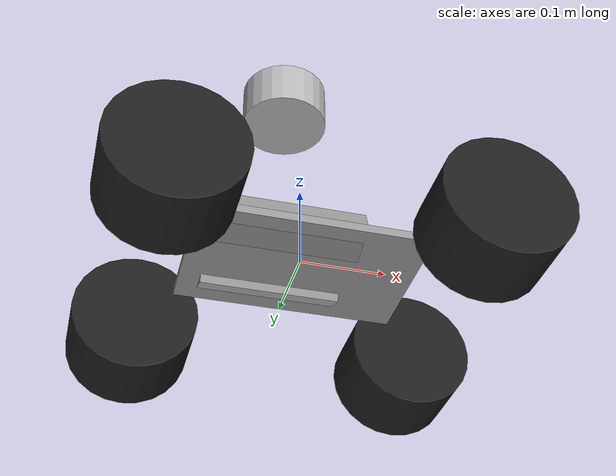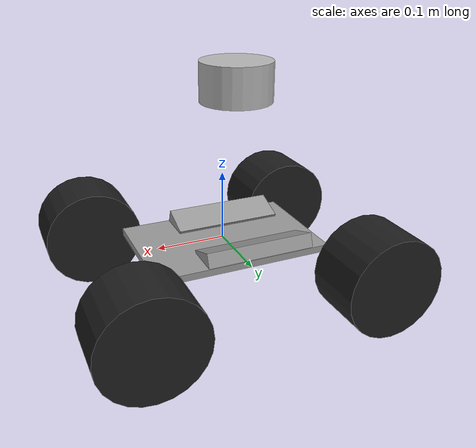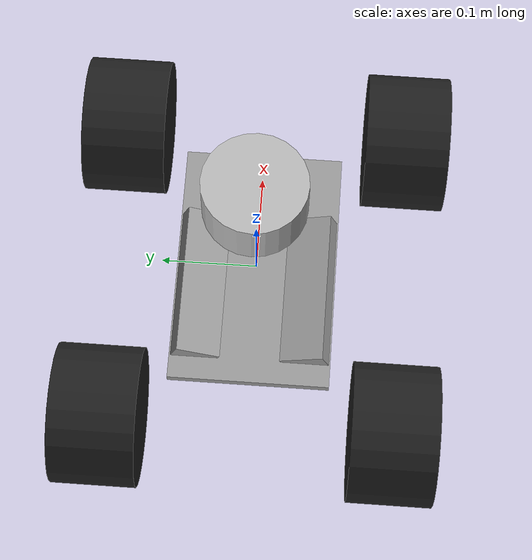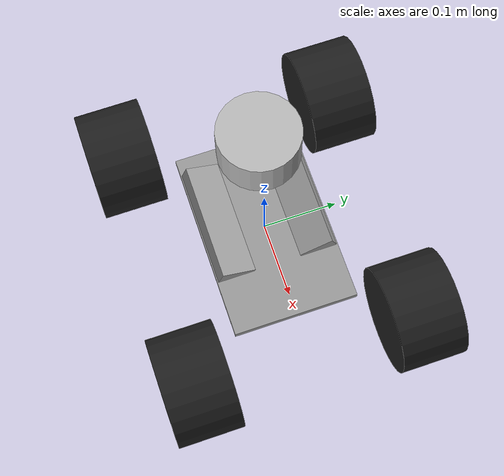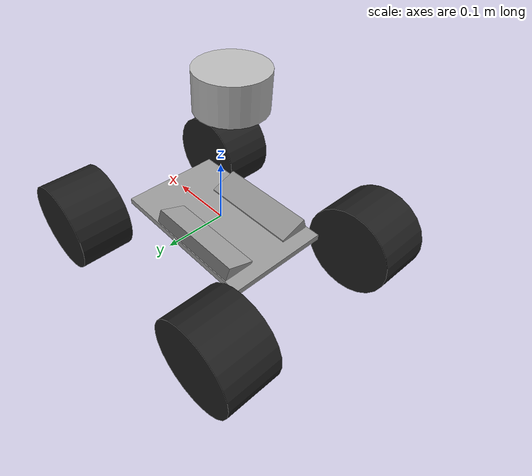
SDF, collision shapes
<?xml version='1.0'?>
<sdf version='1.7'>
  <model name='em_3905'>
    <link name='base_link'>
      <inertial>
        <pose>0 0 -0.003536 0 -0 0</pose>
        <mass>3.795</mass>
        <inertia>
          <ixx>0.0121404</ixx>
          <ixy>0</ixy>
          <ixz>0.00010207</ixz>
          <iyy>0.0201814</iyy>
          <iyz>0</iyz>
          <izz>0.0301018</izz>
        </inertia>
      </inertial>
      <self_collide>0</self_collide>
      <enable_wind>0</enable_wind>
      <kinematic>0</kinematic>
      <pose>0 -0 0 0 -0 0</pose>
      <gravity>1</gravity>
      <visual name='base_link_visual'>
        <pose>0 0 0 0 -0 0</pose>
        <geometry>
          <box>
            <size>0.01 0.01 0.01</size>
          </box>
        </geometry>
        <material>
          <script>
            <name>Gazebo/Grey</name>
            <uri>file://media/materials/scripts/gazebo.material</uri>
          </script>
          <shader type='pixel'>
            <normal_map>__default__</normal_map>
          </shader>
          <ambient>0.3 0.3 0.3 1</ambient>
          <diffuse>0.7 0.7 0.7 1</diffuse>
          <specular>0.01 0.01 0.01 1</specular>
          <emissive>0 0 0 1</emissive>
        </material>
        <transparency>0</transparency>
        <cast_shadows>1</cast_shadows>
      </visual>
      <visual name='base_link_fixed_joint_lump__chassis_visual_1'>
        <pose>0 0 -0.005 0 -0 0</pose>
        <geometry>
          <box>
            <size>0.258 0.168 0.01</size>
          </box>
        </geometry>
        <material>
          <script>
            <name>Gazebo/Grey</name>
            <uri>file://media/materials/scripts/gazebo.material</uri>
          </script>
          <shader type='pixel'>
            <normal_map>__default__</normal_map>
          </shader>
          <ambient>0.3 0.3 0.3 1</ambient>
          <diffuse>0.7 0.7 0.7 1</diffuse>
          <specular>0.01 0.01 0.01 1</specular>
          <emissive>0 0 0 1</emissive>
        </material>
        <transparency>0</transparency>
        <cast_shadows>1</cast_shadows>
      </visual>
      <visual name='base_link_fixed_joint_lump__left_battery_visual_2'>
        <pose>-0.025 0.057319 0.00052 0.349066 -0 0</pose>
        <geometry>
          <box>
            <size>0.16 0.047 0.024</size>
          </box>
        </geometry>
        <material>
          <script>
            <name>Gazebo/Blue</name>
            <uri>file://media/materials/scripts/gazebo.material</uri>
          </script>
          <shader type='pixel'>
            <normal_map>__default__</normal_map>
          </shader>
          <ambient>0 0 1 1</ambient>
          <diffuse>0 0 1 1</diffuse>
          <specular>0.1 0.1 0.1 1</specular>
          <emissive>0 0 0 1</emissive>
        </material>
        <transparency>0</transparency>
        <cast_shadows>1</cast_shadows>
      </visual>
      <visual name='base_link_fixed_joint_lump__right_battery_visual_3'>
        <pose>-0.025 -0.057319 0.00052 -0.349066 0 0</pose>
        <geometry>
          <box>
            <size>0.16 0.047 0.024</size>
          </box>
        </geometry>
        <material>
          <script>
            <name>Gazebo/Blue</name>
            <uri>file://media/materials/scripts/gazebo.material</uri>
          </script>
          <shader type='pixel'>
            <normal_map>__default__</normal_map>
          </shader>
          <ambient>0 0 1 1</ambient>
          <diffuse>0 0 1 1</diffuse>
          <specular>0.1 0.1 0.1 1</specular>
          <emissive>0 0 0 1</emissive>
        </material>
        <transparency>0</transparency>
        <cast_shadows>1</cast_shadows>
      </visual>
      <collision name='base_link_fixed_joint_lump__chassis_collision'>
        <laser_retro>0</laser_retro>
        <max_contacts>10</max_contacts>
        <pose>0 0 -0.005 0 -0 0</pose>
        <geometry>
          <box>
            <size>0.258 0.168 0.01</size>
          </box>
        </geometry>
        <surface>
          <friction>
            <ode>
              <mu>1</mu>
              <mu2>1</mu2>
              <fdir1>0 0 0</fdir1>
              <slip1>0</slip1>
              <slip2>0</slip2>
            </ode>
            <torsional>
              <coefficient>1</coefficient>
              <patch_radius>0</patch_radius>
              <surface_radius>0</surface_radius>
              <use_patch_radius>1</use_patch_radius>
              <ode>
                <slip>0</slip>
              </ode>
            </torsional>
          </friction>
          <bounce>
            <restitution_coefficient>0</restitution_coefficient>
            <threshold>1e+06</threshold>
          </bounce>
          <contact>
            <collide_without_contact>0</collide_without_contact>
            <collide_without_contact_bitmask>1</collide_without_contact_bitmask>
            <collide_bitmask>1</collide_bitmask>
            <ode>
              <soft_cfm>0</soft_cfm>
              <soft_erp>0.2</soft_erp>
              <kp>1e+13</kp>
              <kd>1</kd>
              <max_vel>0.01</max_vel>
              <min_depth>0</min_depth>
            </ode>
            <bullet>
              <split_impulse>1</split_impulse>
              <split_impulse_penetration_threshold>-0.01</split_impulse_penetration_threshold>
              <soft_cfm>0</soft_cfm>
              <soft_erp>0.2</soft_erp>
              <kp>1e+13</kp>
              <kd>1</kd>
            </bullet>
          </contact>
        </surface>
      </collision>
      <collision name='base_link_fixed_joint_lump__left_battery_collision_1'>
        <laser_retro>0</laser_retro>
        <max_contacts>10</max_contacts>
        <pose>-0.025 0.057319 0.00052 0.349066 -0 0</pose>
        <geometry>
          <box>
            <size>0.16 0.047 0.024</size>
          </box>
        </geometry>
        <surface>
          <friction>
            <ode>
              <mu>1</mu>
              <mu2>1</mu2>
              <fdir1>0 0 0</fdir1>
              <slip1>0</slip1>
              <slip2>0</slip2>
            </ode>
            <torsional>
              <coefficient>1</coefficient>
              <patch_radius>0</patch_radius>
              <surface_radius>0</surface_radius>
              <use_patch_radius>1</use_patch_radius>
              <ode>
                <slip>0</slip>
              </ode>
            </torsional>
          </friction>
          <bounce>
            <restitution_coefficient>0</restitution_coefficient>
            <threshold>1e+06</threshold>
          </bounce>
          <contact>
            <collide_without_contact>0</collide_without_contact>
            <collide_without_contact_bitmask>1</collide_without_contact_bitmask>
            <collide_bitmask>1</collide_bitmask>
            <ode>
              <soft_cfm>0</soft_cfm>
              <soft_erp>0.2</soft_erp>
              <kp>1e+13</kp>
              <kd>1</kd>
              <max_vel>0.01</max_vel>
              <min_depth>0</min_depth>
            </ode>
            <bullet>
              <split_impulse>1</split_impulse>
              <split_impulse_penetration_threshold>-0.01</split_impulse_penetration_threshold>
              <soft_cfm>0</soft_cfm>
              <soft_erp>0.2</soft_erp>
              <kp>1e+13</kp>
              <kd>1</kd>
            </bullet>
          </contact>
        </surface>
      </collision>
      <collision name='base_link_fixed_joint_lump__right_battery_collision_2'>
        <laser_retro>0</laser_retro>
        <max_contacts>10</max_contacts>
        <pose>-0.025 -0.057319 0.00052 -0.349066 0 0</pose>
        <geometry>
          <box>
            <size>0.16 0.047 0.024</size>
          </box>
        </geometry>
        <surface>
          <friction>
            <ode>
              <mu>1</mu>
              <mu2>1</mu2>
              <fdir1>0 0 0</fdir1>
              <slip1>0</slip1>
              <slip2>0</slip2>
            </ode>
            <torsional>
              <coefficient>1</coefficient>
              <patch_radius>0</patch_radius>
              <surface_radius>0</surface_radius>
              <use_patch_radius>1</use_patch_radius>
              <ode>
                <slip>0</slip>
              </ode>
            </torsional>
          </friction>
          <bounce>
            <restitution_coefficient>0</restitution_coefficient>
            <threshold>1e+06</threshold>
          </bounce>
          <contact>
            <collide_without_contact>0</collide_without_contact>
            <collide_without_contact_bitmask>1</collide_without_contact_bitmask>
            <collide_bitmask>1</collide_bitmask>
            <ode>
              <soft_cfm>0</soft_cfm>
              <soft_erp>0.2</soft_erp>
              <kp>1e+13</kp>
              <kd>1</kd>
              <max_vel>0.01</max_vel>
              <min_depth>0</min_depth>
            </ode>
            <bullet>
              <split_impulse>1</split_impulse>
              <split_impulse_penetration_threshold>-0.01</split_impulse_penetration_threshold>
              <soft_cfm>0</soft_cfm>
              <soft_erp>0.2</soft_erp>
              <kp>1e+13</kp>
              <kd>1</kd>
            </bullet>
          </contact>
        </surface>
      </collision>
    </link>
    <link name='base_scan'>
      <inertial>
        <pose>-0.02 0 0.161 0 -0 0</pose>
        <inertia>
          <ixx>0.001</ixx>
          <ixy>0</ixy>
          <ixz>0</ixz>
          <iyy>0.001</iyy>
          <iyz>0</iyz>
          <izz>0.001</izz>
        </inertia>
        <mass>0.114</mass>
      </inertial>
      <sensor name='hls_lfcd_lds' type='ray'>
        <always_on>1</always_on>
        <visualize>1</visualize>
        <pose>-0.032 0 0.171 0 -0 0</pose>
        <update_rate>5</update_rate>
        <ray>
          <scan>
            <horizontal>
              <samples>360</samples>
              <resolution>1</resolution>
              <min_angle>0</min_angle>
              <max_angle>6.28</max_angle>
            </horizontal>
            <vertical>
              <samples>1</samples>
              <min_angle>0</min_angle>
              <max_angle>0</max_angle>
            </vertical>
          </scan>
          <range>
            <min>0.12</min>
            <max>3.5</max>
            <resolution>0.015</resolution>
          </range>
          <noise>
            <type>gaussian</type>
            <mean>0</mean>
            <stddev>0.01</stddev>
          </noise>
        </ray>
        <plugin name='turtlebot3_laserscan' filename='libgazebo_ros_ray_sensor.so'>
          <ros>
            <remapping>~/out:=scan</remapping>
          </ros>
          <output_type>sensor_msgs/LaserScan</output_type>
          <frame_name>base_scan</frame_name>
        </plugin>
      </sensor>
      <self_collide>0</self_collide>
      <enable_wind>0</enable_wind>
      <kinematic>0</kinematic>
      <pose>0 -0 0.067201 0 -0 0</pose>
      <visual name='lidar_sensor_visual'>
        <pose>-0.032 0 0.171 0 -0 0</pose>
        <geometry>
          <mesh>
            <uri>model://turtlebot3_burger/meshes/lds.dae</uri>
            <scale>0.001 0.001 0.001</scale>
          </mesh>
        </geometry>
        <material>
          <shader type='pixel'/>
        </material>
        <transparency>0</transparency>
        <cast_shadows>1</cast_shadows>
      </visual>
      <collision name='lidar_sensor_collision'>
        <laser_retro>0</laser_retro>
        <max_contacts>10</max_contacts>
        <pose>-0.02 0 0.161 0 -0 0</pose>
        <geometry>
          <cylinder>
            <radius>0.0508</radius>
            <length>0.055</length>
          </cylinder>
        </geometry>
        <surface>
          <friction>
            <ode>
              <mu>1</mu>
              <mu2>1</mu2>
              <fdir1>0 0 0</fdir1>
              <slip1>0</slip1>
              <slip2>0</slip2>
            </ode>
            <torsional>
              <coefficient>1</coefficient>
              <patch_radius>0</patch_radius>
              <surface_radius>0</surface_radius>
              <use_patch_radius>1</use_patch_radius>
              <ode>
                <slip>0</slip>
              </ode>
            </torsional>
          </friction>
          <bounce>
            <restitution_coefficient>0</restitution_coefficient>
            <threshold>1e+06</threshold>
          </bounce>
          <contact>
            <collide_without_contact>0</collide_without_contact>
            <collide_without_contact_bitmask>1</collide_without_contact_bitmask>
            <collide_bitmask>1</collide_bitmask>
            <ode>
              <soft_cfm>0</soft_cfm>
              <soft_erp>0.2</soft_erp>
              <kp>1e+13</kp>
              <kd>1</kd>
              <max_vel>0.01</max_vel>
              <min_depth>0</min_depth>
            </ode>
            <bullet>
              <split_impulse>1</split_impulse>
              <split_impulse_penetration_threshold>-0.01</split_impulse_penetration_threshold>
              <soft_cfm>0</soft_cfm>
              <soft_erp>0.2</soft_erp>
              <kp>1e+13</kp>
              <kd>1</kd>
            </bullet>
          </contact>
        </surface>
      </collision>
    </link>
    <link name='imu_link'>
      <sensor name='tb3_imu' type='imu'>
        <always_on>1</always_on>
        <update_rate>200</update_rate>
        <imu>
          <angular_velocity>
            <x>
              <noise type='gaussian'>
                <mean>0</mean>
                <stddev>0.0002</stddev>
              </noise>
            </x>
            <y>
              <noise type='gaussian'>
                <mean>0</mean>
                <stddev>0.0002</stddev>
              </noise>
            </y>
            <z>
              <noise type='gaussian'>
                <mean>0</mean>
                <stddev>0.0002</stddev>
              </noise>
            </z>
          </angular_velocity>
          <linear_acceleration>
            <x>
              <noise type='gaussian'>
                <mean>0</mean>
                <stddev>0.017</stddev>
              </noise>
            </x>
            <y>
              <noise type='gaussian'>
                <mean>0</mean>
                <stddev>0.017</stddev>
              </noise>
            </y>
            <z>
              <noise type='gaussian'>
                <mean>0</mean>
                <stddev>0.017</stddev>
              </noise>
            </z>
          </linear_acceleration>
          <angular_velocity/>
          <linear_acceleration/>
        </imu>
        <plugin name='turtlebot3_imu' filename='libgazebo_ros_imu_sensor.so'>
          <ros>
            <remapping>~/out:=imu</remapping>
          </ros>
        </plugin>
      </sensor>
      <self_collide>0</self_collide>
      <inertial>
        <pose>0 0 0 0 -0 0</pose>
        <inertia>
          <ixx>1</ixx>
          <ixy>0</ixy>
          <ixz>0</ixz>
          <iyy>1</iyy>
          <iyz>0</iyz>
          <izz>1</izz>
        </inertia>
        <mass>1</mass>
      </inertial>
      <enable_wind>0</enable_wind>
      <kinematic>0</kinematic>
      <pose>0 -0 0 0 -0 0</pose>
    </link>
    <link name='left_front_axle_carrier'>
      <pose>0.1675 0.1525 -0.0235 0 -0 0</pose>
      <inertial>
        <pose>0 0 0 0 -0 0</pose>
        <mass>0.001</mass>
        <inertia>
          <ixx>0.001</ixx>
          <ixy>0</ixy>
          <ixz>0</ixz>
          <iyy>0.001</iyy>
          <iyz>0</iyz>
          <izz>0.001</izz>
        </inertia>
      </inertial>
      <self_collide>0</self_collide>
      <enable_wind>0</enable_wind>
      <kinematic>0</kinematic>
    </link>
    <link name='left_front_wheel'>
      <pose>0.1675 0.1525 -0.0235 1.5708 -0 0</pose>
      <inertial>
        <pose>0 0 0 0 -0 0</pose>
        <mass>0.29</mass>
        <inertia>
          <ixx>0.000746466</ixx>
          <ixy>0</ixy>
          <ixz>0</ixz>
          <iyy>0.000746466</iyy>
          <iyz>0</iyz>
          <izz>0.00111094</izz>
        </inertia>
      </inertial>
      <self_collide>0</self_collide>
      <enable_wind>0</enable_wind>
      <kinematic>0</kinematic>
      <visual name='left_front_wheel_visual'>
        <pose>0 -0 0 0 -0 0</pose>
        <geometry>
          <cylinder>
            <length>0.0889</length>
            <radius>0.073025</radius>
          </cylinder>
        </geometry>
        <material>
          <script>
            <name>Gazebo/Black</name>
            <uri>file://media/materials/scripts/gazebo.material</uri>
          </script>
          <shader type='pixel'/>
        </material>
        <transparency>0</transparency>
        <cast_shadows>1</cast_shadows>
      </visual>
      <collision name='left_front_wheel_collision'>
        <laser_retro>0</laser_retro>
        <max_contacts>10</max_contacts>
        <pose>0 0 0 0 -0 0</pose>
        <geometry>
          <cylinder>
            <radius>0.073025</radius>
            <length>0.0889</length>
          </cylinder>
        </geometry>
        <surface>
          <friction>
            <ode>
              <mu>1</mu>
              <mu2>1</mu2>
              <fdir1>0 0 0</fdir1>
              <slip1>0</slip1>
              <slip2>0</slip2>
            </ode>
            <torsional>
              <coefficient>1</coefficient>
              <patch_radius>0</patch_radius>
              <surface_radius>0</surface_radius>
              <use_patch_radius>1</use_patch_radius>
              <ode>
                <slip>0</slip>
              </ode>
            </torsional>
          </friction>
          <bounce>
            <restitution_coefficient>0</restitution_coefficient>
            <threshold>1e+06</threshold>
          </bounce>
          <contact>
            <collide_without_contact>0</collide_without_contact>
            <collide_without_contact_bitmask>1</collide_without_contact_bitmask>
            <collide_bitmask>1</collide_bitmask>
            <ode>
              <soft_cfm>0</soft_cfm>
              <soft_erp>0.2</soft_erp>
              <kp>1e+13</kp>
              <kd>1</kd>
              <max_vel>0.01</max_vel>
              <min_depth>0</min_depth>
            </ode>
            <bullet>
              <split_impulse>1</split_impulse>
              <split_impulse_penetration_threshold>-0.01</split_impulse_penetration_threshold>
              <soft_cfm>0</soft_cfm>
              <soft_erp>0.2</soft_erp>
              <kp>1e+13</kp>
              <kd>1</kd>
            </bullet>
          </contact>
        </surface>
      </collision>
    </link>
    <link name='left_rear_axle_carrier'>
      <pose>-0.1675 0.1525 -0.0235 0 -0 0</pose>
      <inertial>
        <pose>0 0 0 0 -0 0</pose>
        <mass>0.001</mass>
        <inertia>
          <ixx>0.001</ixx>
          <ixy>0</ixy>
          <ixz>0</ixz>
          <iyy>0.001</iyy>
          <iyz>0</iyz>
          <izz>0.001</izz>
        </inertia>
      </inertial>
      <self_collide>0</self_collide>
      <enable_wind>0</enable_wind>
      <kinematic>0</kinematic>
    </link>
    <link name='left_rear_wheel'>
      <pose>-0.1675 0.1525 -0.0235 1.5708 -0 0</pose>
      <inertial>
        <pose>0 0 0 0 -0 0</pose>
        <mass>0.29</mass>
        <inertia>
          <ixx>0.000746466</ixx>
          <ixy>0</ixy>
          <ixz>0</ixz>
          <iyy>0.000746466</iyy>
          <iyz>0</iyz>
          <izz>0.00111094</izz>
        </inertia>
      </inertial>
      <self_collide>0</self_collide>
      <enable_wind>0</enable_wind>
      <kinematic>0</kinematic>
      <visual name='left_rear_wheel_visual'>
        <pose>0 -0 0 0 -0 0</pose>
        <geometry>
          <cylinder>
            <length>0.0889</length>
            <radius>0.073025</radius>
          </cylinder>
        </geometry>
        <material>
          <script>
            <name>Gazebo/Black</name>
            <uri>file://media/materials/scripts/gazebo.material</uri>
          </script>
          <shader type='pixel'/>
        </material>
        <transparency>0</transparency>
        <cast_shadows>1</cast_shadows>
      </visual>
      <collision name='left_rear_wheel_collision'>
        <laser_retro>0</laser_retro>
        <max_contacts>10</max_contacts>
        <pose>0 0 0 0 -0 0</pose>
        <geometry>
          <cylinder>
            <radius>0.073025</radius>
            <length>0.0889</length>
          </cylinder>
        </geometry>
        <surface>
          <friction>
            <ode>
              <mu>1</mu>
              <mu2>1</mu2>
              <fdir1>0 0 0</fdir1>
              <slip1>0</slip1>
              <slip2>0</slip2>
            </ode>
            <torsional>
              <coefficient>1</coefficient>
              <patch_radius>0</patch_radius>
              <surface_radius>0</surface_radius>
              <use_patch_radius>1</use_patch_radius>
              <ode>
                <slip>0</slip>
              </ode>
            </torsional>
          </friction>
          <bounce>
            <restitution_coefficient>0</restitution_coefficient>
            <threshold>1e+06</threshold>
          </bounce>
          <contact>
            <collide_without_contact>0</collide_without_contact>
            <collide_without_contact_bitmask>1</collide_without_contact_bitmask>
            <collide_bitmask>1</collide_bitmask>
            <ode>
              <soft_cfm>0</soft_cfm>
              <soft_erp>0.2</soft_erp>
              <kp>1e+13</kp>
              <kd>1</kd>
              <max_vel>0.01</max_vel>
              <min_depth>0</min_depth>
            </ode>
            <bullet>
              <split_impulse>1</split_impulse>
              <split_impulse_penetration_threshold>-0.01</split_impulse_penetration_threshold>
              <soft_cfm>0</soft_cfm>
              <soft_erp>0.2</soft_erp>
              <kp>1e+13</kp>
              <kd>1</kd>
            </bullet>
          </contact>
        </surface>
      </collision>
    </link>
    <link name='left_steering_link'>
      <pose>0.1675 0.1525 -0.0235 0 -0 0</pose>
      <inertial>
        <pose>0 0 0 0 -0 0</pose>
        <mass>0.001</mass>
        <inertia>
          <ixx>0.001</ixx>
          <ixy>0</ixy>
          <ixz>0</ixz>
          <iyy>0.001</iyy>
          <iyz>0</iyz>
          <izz>0.001</izz>
        </inertia>
      </inertial>
      <self_collide>0</self_collide>
      <enable_wind>0</enable_wind>
      <kinematic>0</kinematic>
    </link>
    <link name='right_front_axle_carrier'>
      <pose>0.1675 -0.1525 -0.0235 0 -0 0</pose>
      <inertial>
        <pose>0 0 0 0 -0 0</pose>
        <mass>0.001</mass>
        <inertia>
          <ixx>0.001</ixx>
          <ixy>0</ixy>
          <ixz>0</ixz>
          <iyy>0.001</iyy>
          <iyz>0</iyz>
          <izz>0.001</izz>
        </inertia>
      </inertial>
      <self_collide>0</self_collide>
      <enable_wind>0</enable_wind>
      <kinematic>0</kinematic>
    </link>
    <link name='right_front_wheel'>
      <pose>0.1675 -0.1525 -0.0235 1.5708 -0 0</pose>
      <inertial>
        <pose>0 0 0 0 -0 0</pose>
        <mass>0.29</mass>
        <inertia>
          <ixx>0.000746466</ixx>
          <ixy>0</ixy>
          <ixz>0</ixz>
          <iyy>0.000746466</iyy>
          <iyz>0</iyz>
          <izz>0.00111094</izz>
        </inertia>
      </inertial>
      <self_collide>0</self_collide>
      <enable_wind>0</enable_wind>
      <kinematic>0</kinematic>
      <visual name='right_front_wheel_visual'>
        <pose>0 0 0 0 -0 0</pose>
        <geometry>
          <cylinder>
            <length>0.0889</length>
            <radius>0.073025</radius>
          </cylinder>
        </geometry>
        <material>
          <script>
            <name>Gazebo/Black</name>
            <uri>file://media/materials/scripts/gazebo.material</uri>
          </script>
          <shader type='pixel'/>
        </material>
        <transparency>0</transparency>
        <cast_shadows>1</cast_shadows>
      </visual>
      <collision name='right_front_wheel_collision'>
        <laser_retro>0</laser_retro>
        <max_contacts>10</max_contacts>
        <pose>0 0 0 0 -0 0</pose>
        <geometry>
          <cylinder>
            <radius>0.073025</radius>
            <length>0.0889</length>
          </cylinder>
        </geometry>
        <surface>
          <friction>
            <ode>
              <mu>1</mu>
              <mu2>1</mu2>
              <fdir1>0 0 0</fdir1>
              <slip1>0</slip1>
              <slip2>0</slip2>
            </ode>
            <torsional>
              <coefficient>1</coefficient>
              <patch_radius>0</patch_radius>
              <surface_radius>0</surface_radius>
              <use_patch_radius>1</use_patch_radius>
              <ode>
                <slip>0</slip>
              </ode>
            </torsional>
          </friction>
          <bounce>
            <restitution_coefficient>0</restitution_coefficient>
            <threshold>1e+06</threshold>
          </bounce>
          <contact>
            <collide_without_contact>0</collide_without_contact>
            <collide_without_contact_bitmask>1</collide_without_contact_bitmask>
            <collide_bitmask>1</collide_bitmask>
            <ode>
              <soft_cfm>0</soft_cfm>
              <soft_erp>0.2</soft_erp>
              <kp>1e+13</kp>
              <kd>1</kd>
              <max_vel>0.01</max_vel>
              <min_depth>0</min_depth>
            </ode>
            <bullet>
              <split_impulse>1</split_impulse>
              <split_impulse_penetration_threshold>-0.01</split_impulse_penetration_threshold>
              <soft_cfm>0</soft_cfm>
              <soft_erp>0.2</soft_erp>
              <kp>1e+13</kp>
              <kd>1</kd>
            </bullet>
          </contact>
        </surface>
      </collision>
    </link>
    <link name='right_rear_axle_carrier'>
      <pose>-0.1675 -0.1525 -0.0235 0 -0 0</pose>
      <inertial>
        <pose>0 0 0 0 -0 0</pose>
        <mass>0.001</mass>
        <inertia>
          <ixx>0.001</ixx>
          <ixy>0</ixy>
          <ixz>0</ixz>
          <iyy>0.001</iyy>
          <iyz>0</iyz>
          <izz>0.001</izz>
        </inertia>
      </inertial>
      <self_collide>0</self_collide>
      <enable_wind>0</enable_wind>
      <kinematic>0</kinematic>
    </link>
    <link name='right_rear_wheel'>
      <pose>-0.1675 -0.1525 -0.0235 1.5708 -0 0</pose>
      <inertial>
        <pose>0 0 0 0 -0 0</pose>
        <mass>0.29</mass>
        <inertia>
          <ixx>0.000746466</ixx>
          <ixy>0</ixy>
          <ixz>0</ixz>
          <iyy>0.000746466</iyy>
          <iyz>0</iyz>
          <izz>0.00111094</izz>
        </inertia>
      </inertial>
      <self_collide>0</self_collide>
      <enable_wind>0</enable_wind>
      <kinematic>0</kinematic>
      <visual name='right_rear_wheel_visual'>
        <pose>0 0 0 0 -0 0</pose>
        <geometry>
          <cylinder>
            <length>0.0889</length>
            <radius>0.073025</radius>
          </cylinder>
        </geometry>
        <material>
          <script>
            <name>Gazebo/Black</name>
            <uri>file://media/materials/scripts/gazebo.material</uri>
          </script>
          <shader type='pixel'/>
        </material>
        <transparency>0</transparency>
        <cast_shadows>1</cast_shadows>
      </visual>
      <collision name='right_rear_wheel_collision'>
        <laser_retro>0</laser_retro>
        <max_contacts>10</max_contacts>
        <pose>0 0 0 0 -0 0</pose>
        <geometry>
          <cylinder>
            <radius>0.073025</radius>
            <length>0.0889</length>
          </cylinder>
        </geometry>
        <surface>
          <friction>
            <ode>
              <mu>1</mu>
              <mu2>1</mu2>
              <fdir1>0 0 0</fdir1>
              <slip1>0</slip1>
              <slip2>0</slip2>
            </ode>
            <torsional>
              <coefficient>1</coefficient>
              <patch_radius>0</patch_radius>
              <surface_radius>0</surface_radius>
              <use_patch_radius>1</use_patch_radius>
              <ode>
                <slip>0</slip>
              </ode>
            </torsional>
          </friction>
          <bounce>
            <restitution_coefficient>0</restitution_coefficient>
            <threshold>1e+06</threshold>
          </bounce>
          <contact>
            <collide_without_contact>0</collide_without_contact>
            <collide_without_contact_bitmask>1</collide_without_contact_bitmask>
            <collide_bitmask>1</collide_bitmask>
            <ode>
              <soft_cfm>0</soft_cfm>
              <soft_erp>0.2</soft_erp>
              <kp>1e+13</kp>
              <kd>1</kd>
              <max_vel>0.01</max_vel>
              <min_depth>0</min_depth>
            </ode>
            <bullet>
              <split_impulse>1</split_impulse>
              <split_impulse_penetration_threshold>-0.01</split_impulse_penetration_threshold>
              <soft_cfm>0</soft_cfm>
              <soft_erp>0.2</soft_erp>
              <kp>1e+13</kp>
              <kd>1</kd>
            </bullet>
          </contact>
        </surface>
      </collision>
    </link>
    <link name='right_steering_link'>
      <pose>0.1675 -0.1525 -0.0235 0 -0 0</pose>
      <inertial>
        <pose>0 0 0 0 -0 0</pose>
        <mass>0.001</mass>
        <inertia>
          <ixx>0.001</ixx>
          <ixy>0</ixy>
          <ixz>0</ixz>
          <iyy>0.001</iyy>
          <iyz>0</iyz>
          <izz>0.001</izz>
        </inertia>
      </inertial>
      <self_collide>0</self_collide>
      <enable_wind>0</enable_wind>
      <kinematic>0</kinematic>
    </link>
    <joint name='left_front_axle' type='revolute'>
      <parent>left_front_axle_carrier</parent>
      <child>left_front_wheel</child>
      <pose>0 -0 -0 0 -0 0</pose>
      <axis>
        <xyz>0 0 -1</xyz>
        <limit>
          <lower>-1e+16</lower>
          <upper>1e+16</upper>
          <effort>5.12766</effort>
          <velocity>244.87</velocity>
        </limit>
        <dynamics>
          <spring_reference>0</spring_reference>
          <spring_stiffness>0</spring_stiffness>
          <damping>0</damping>
          <friction>0</friction>
        </dynamics>
      </axis>
      <physics>
        <ode>
          <limit>
            <cfm>0</cfm>
            <erp>0.2</erp>
          </limit>
          <suspension>
            <cfm>0</cfm>
            <erp>0.2</erp>
          </suspension>
        </ode>
      </physics>
    </joint>
    <joint name='sensor_to_base' type='fixed'>
      <parent>base_link</parent>
      <child>base_scan</child>
      <pose>0 0 0 0 0 0</pose>
    </joint>
    <joint name='imu_joint' type='fixed'>
      <parent>base_link</parent>
      <child>imu_link</child>
      <pose>-0.032 0 0.068 0 -0 0</pose>
      <physics>
        <ode>
          <limit>
            <cfm>0</cfm>
            <erp>0.2</erp>
          </limit>
          <suspension>
            <cfm>0</cfm>
            <erp>0.2</erp>
          </suspension>
        </ode>
      </physics>
    </joint>
    <joint name='left_front_shock' type='prismatic'>
      <parent>base_link</parent>
      <child>left_steering_link</child>
      <pose>0 0 0 0 -0 0</pose>
      <axis>
        <xyz>0 0 -1</xyz>
        <limit>
          <lower>-0.042</lower>
          <upper>0.042</upper>
          <effort>12.5106</effort>
          <velocity>1000</velocity>
        </limit>
        <dynamics>
          <spring_reference>0</spring_reference>
          <spring_stiffness>0</spring_stiffness>
          <damping>0</damping>
          <friction>0</friction>
        </dynamics>
      </axis>
      <physics>
        <ode>
          <limit>
            <cfm>0</cfm>
            <erp>0.2</erp>
          </limit>
          <suspension>
            <cfm>0</cfm>
            <erp>0.2</erp>
          </suspension>
        </ode>
      </physics>
    </joint>
    <joint name='left_rear_axle' type='revolute'>
      <parent>left_rear_axle_carrier</parent>
      <child>left_rear_wheel</child>
      <pose>-0 -0 -0 0 -0 0</pose>
      <axis>
        <xyz>0 0 -1</xyz>
        <limit>
          <lower>-1e+16</lower>
          <upper>1e+16</upper>
          <effort>5.12766</effort>
          <velocity>244.87</velocity>
        </limit>
        <dynamics>
          <spring_reference>0</spring_reference>
          <spring_stiffness>0</spring_stiffness>
          <damping>0</damping>
          <friction>0</friction>
        </dynamics>
      </axis>
      <physics>
        <ode>
          <limit>
            <cfm>0</cfm>
            <erp>0.2</erp>
          </limit>
          <suspension>
            <cfm>0</cfm>
            <erp>0.2</erp>
          </suspension>
        </ode>
      </physics>
    </joint>
    <joint name='left_rear_shock' type='prismatic'>
      <parent>base_link</parent>
      <child>left_rear_axle_carrier</child>
      <pose>0 0 0 0 -0 0</pose>
      <axis>
        <xyz>0 0 -1</xyz>
        <limit>
          <lower>-0.042</lower>
          <upper>0.042</upper>
          <effort>12.5106</effort>
          <velocity>1000</velocity>
        </limit>
        <dynamics>
          <spring_reference>0</spring_reference>
          <spring_stiffness>0</spring_stiffness>
          <damping>0</damping>
          <friction>0</friction>
        </dynamics>
      </axis>
      <physics>
        <ode>
          <limit>
            <cfm>0</cfm>
            <erp>0.2</erp>
          </limit>
          <suspension>
            <cfm>0</cfm>
            <erp>0.2</erp>
          </suspension>
        </ode>
      </physics>
    </joint>
    <joint name='left_steering_joint' type='revolute'>
      <parent>left_steering_link</parent>
      <child>left_front_axle_carrier</child>
      <pose>0 0 0 0 -0 0</pose>
      <axis>
        <xyz>0 0 1</xyz>
        <limit>
          <lower>-0.785398</lower>
          <upper>0.785398</upper>
          <effort>0.5649</effort>
          <velocity>4.553</velocity>
        </limit>
        <dynamics>
          <spring_reference>0</spring_reference>
          <spring_stiffness>0</spring_stiffness>
          <damping>0</damping>
          <friction>0</friction>
        </dynamics>
      </axis>
      <physics>
        <ode>
          <limit>
            <cfm>0</cfm>
            <erp>0.2</erp>
          </limit>
          <suspension>
            <cfm>0</cfm>
            <erp>0.2</erp>
          </suspension>
        </ode>
      </physics>
    </joint>
    <joint name='right_front_axle' type='revolute'>
      <parent>right_front_axle_carrier</parent>
      <child>right_front_wheel</child>
      <pose>0 0 0 0 -0 0</pose>
      <axis>
        <xyz>0 0 -1</xyz>
        <limit>
          <lower>-1e+16</lower>
          <upper>1e+16</upper>
          <effort>5.12766</effort>
          <velocity>244.87</velocity>
        </limit>
        <dynamics>
          <spring_reference>0</spring_reference>
          <spring_stiffness>0</spring_stiffness>
          <damping>0</damping>
          <friction>0</friction>
        </dynamics>
      </axis>
      <physics>
        <ode>
          <limit>
            <cfm>0</cfm>
            <erp>0.2</erp>
          </limit>
          <suspension>
            <cfm>0</cfm>
            <erp>0.2</erp>
          </suspension>
        </ode>
      </physics>
    </joint>
    <joint name='right_front_shock' type='prismatic'>
      <parent>base_link</parent>
      <child>right_steering_link</child>
      <pose>0 0 0 0 -0 0</pose>
      <axis>
        <xyz>0 0 -1</xyz>
        <limit>
          <lower>-0.042</lower>
          <upper>0.042</upper>
          <effort>12.5106</effort>
          <velocity>1000</velocity>
        </limit>
        <dynamics>
          <spring_reference>0</spring_reference>
          <spring_stiffness>0</spring_stiffness>
          <damping>0</damping>
          <friction>0</friction>
        </dynamics>
      </axis>
      <physics>
        <ode>
          <limit>
            <cfm>0</cfm>
            <erp>0.2</erp>
          </limit>
          <suspension>
            <cfm>0</cfm>
            <erp>0.2</erp>
          </suspension>
        </ode>
      </physics>
    </joint>
    <joint name='right_rear_axle' type='revolute'>
      <parent>right_rear_axle_carrier</parent>
      <child>right_rear_wheel</child>
      <pose>-0 0 0 0 -0 0</pose>
      <axis>
        <xyz>0 0 -1</xyz>
        <limit>
          <lower>-1e+16</lower>
          <upper>1e+16</upper>
          <effort>5.12766</effort>
          <velocity>244.87</velocity>
        </limit>
        <dynamics>
          <spring_reference>0</spring_reference>
          <spring_stiffness>0</spring_stiffness>
          <damping>0</damping>
          <friction>0</friction>
        </dynamics>
      </axis>
      <physics>
        <ode>
          <limit>
            <cfm>0</cfm>
            <erp>0.2</erp>
          </limit>
          <suspension>
            <cfm>0</cfm>
            <erp>0.2</erp>
          </suspension>
        </ode>
      </physics>
    </joint>
    <joint name='right_rear_shock' type='prismatic'>
      <parent>base_link</parent>
      <child>right_rear_axle_carrier</child>
      <pose>0 0 0 0 -0 0</pose>
      <axis>
        <xyz>0 0 -1</xyz>
        <limit>
          <lower>-0.042</lower>
          <upper>0.042</upper>
          <effort>12.5106</effort>
          <velocity>1000</velocity>
        </limit>
        <dynamics>
          <spring_reference>0</spring_reference>
          <spring_stiffness>0</spring_stiffness>
          <damping>0</damping>
          <friction>0</friction>
        </dynamics>
      </axis>
      <physics>
        <ode>
          <limit>
            <cfm>0</cfm>
            <erp>0.2</erp>
          </limit>
          <suspension>
            <cfm>0</cfm>
            <erp>0.2</erp>
          </suspension>
        </ode>
      </physics>
    </joint>
    <joint name='right_steering_joint' type='revolute'>
      <parent>right_steering_link</parent>
      <child>right_front_axle_carrier</child>
      <pose>0 0 0 0 -0 0</pose>
      <axis>
        <xyz>0 0 1</xyz>
        <limit>
          <lower>-0.785398</lower>
          <upper>0.785398</upper>
          <effort>0.5649</effort>
          <velocity>4.553</velocity>
        </limit>
        <dynamics>
          <spring_reference>0</spring_reference>
          <spring_stiffness>0</spring_stiffness>
          <damping>0</damping>
          <friction>0</friction>
        </dynamics>
      </axis>
      <physics>
        <ode>
          <limit>
            <cfm>0</cfm>
            <erp>0.2</erp>
          </limit>
          <suspension>
            <cfm>0</cfm>
            <erp>0.2</erp>
          </suspension>
        </ode>
      </physics>
    </joint>
    <static>0</static>
    <allow_auto_disable>1</allow_auto_disable>
    <plugin name='gazebo_ros_control' filename='libgazebo_ros_control.so'/>
    <plugin name="gazebo_ros_ackermann_drive" filename="libgazebo_ros_ackermann_drive.so">
      <ros>
      </ros>

      <update_rate>50</update_rate>

      <!-- wheels -->
      <front_left_joint>left_front_axle</front_left_joint>
      <front_right_joint>right_front_axle</front_right_joint>
      <rear_left_joint>left_rear_axle</rear_left_joint>
      <rear_right_joint>right_rear_axle</rear_right_joint>

      <!-- Steering Joints -->
      <left_steering_joint>left_steering_joint</left_steering_joint>
      <right_steering_joint>right_steering_joint</right_steering_joint>

      <!-- Max absolute steer angle for tyre in radians -->
      <max_steer>0.6458</max_steer>

      <!-- Max absolute linear speed in m/s -->
      <max_speed>20</max_speed>

      <!-- PID tuning -->
      <left_steering_pid_gain>1500 0 1</left_steering_pid_gain>
      <right_steering_pid_gain>1500 0 1</right_steering_pid_gain>
      <linear_velocity_pid_gain>1000 0 1</linear_velocity_pid_gain>

      <!-- Output -->
      <publish_odom>true</publish_odom>
      <publish_odom_tf>true</publish_odom_tf>
      <publish_wheel_tf>true</publish_wheel_tf>
      <publish_wheel_joint_state>true</publish_wheel_joint_state>

      <odometry_frame>odom</odometry_frame>
      <robot_base_frame>base_link</robot_base_frame>
    </plugin>
  </model>
</sdf>
